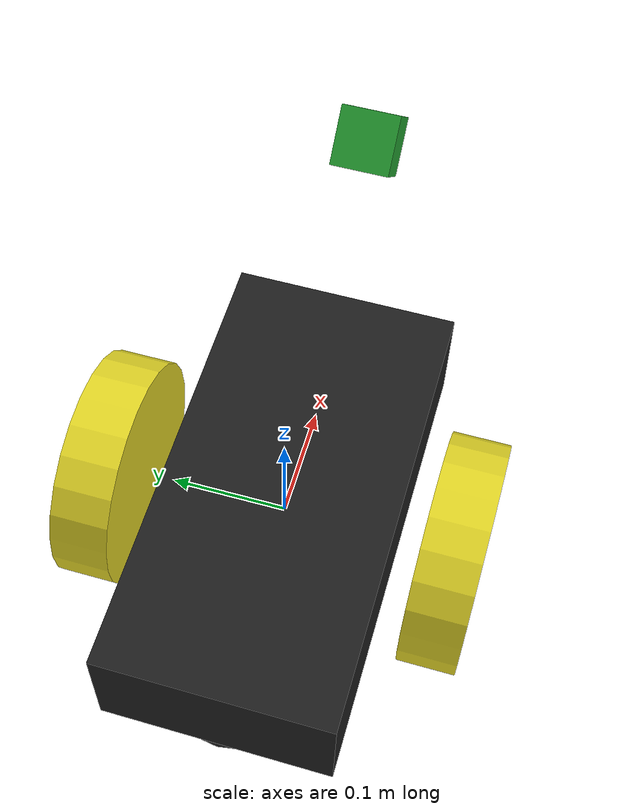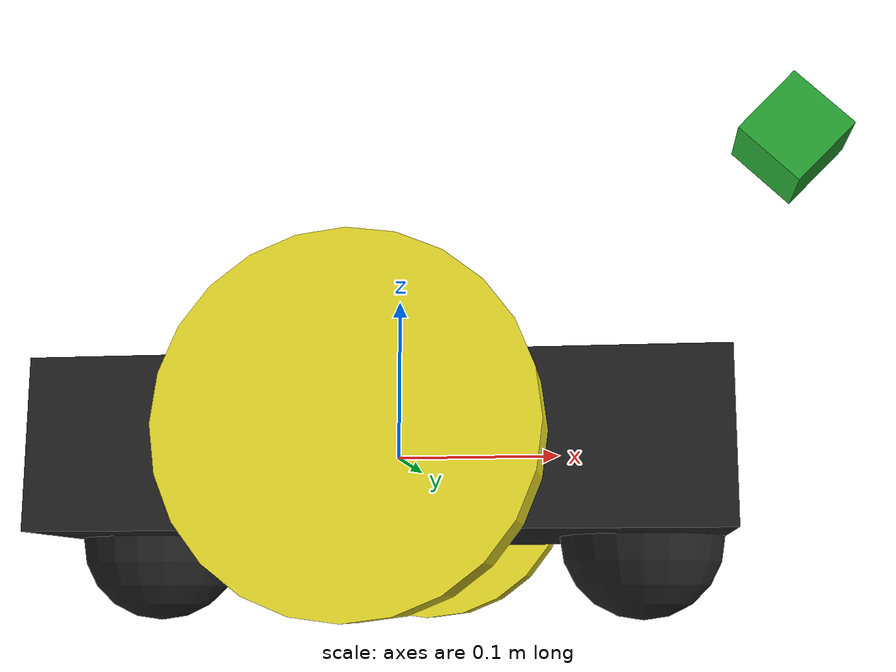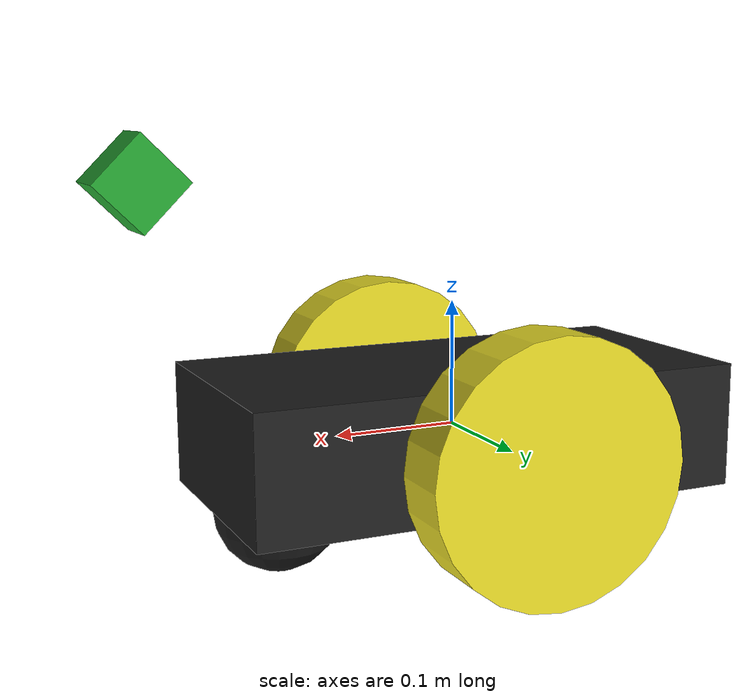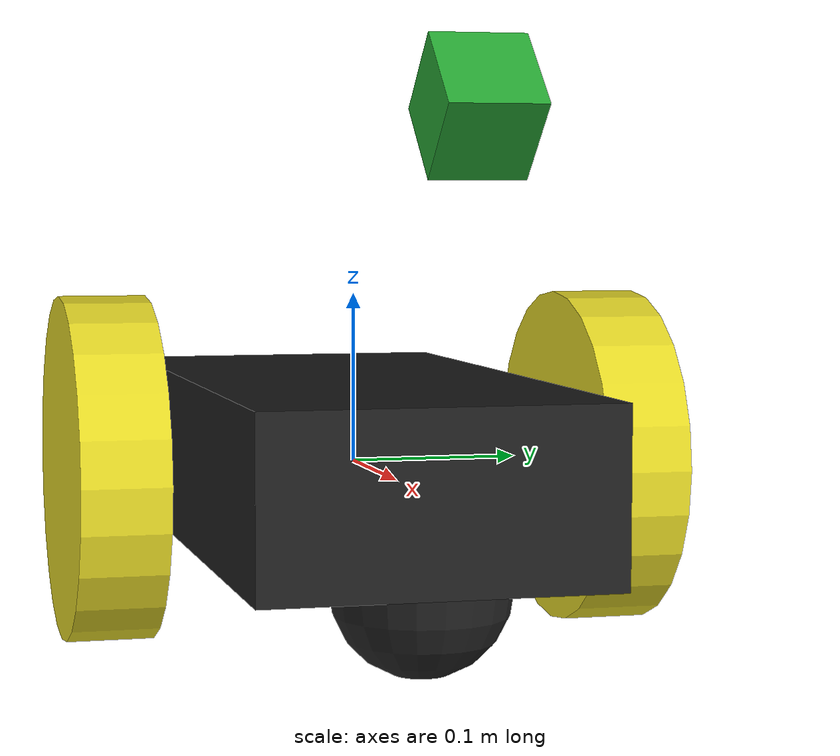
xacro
<?xml version='1.0'?>

<robot name="myrobot" xmlns:xacro="http://www.ros.org/wiki/xacro">

  <xacro:property name="cameraSize" value="0.05"/>
  <xacro:property name="cameraMass" value="0.1"/>

  <xacro:include filename="$(find aruco_nav)/urdf/materials.xacro"/>
  <xacro:include filename="$(find aruco_nav)/urdf/spcbot.gazebo.xacro"/>

  <link name='chassis'>
    <pose>0 0 0.1 0 0 0</pose>

    <inertial>
      <mass value="5.0"/>
      <origin xyz="0.0 0 0.1" rpy=" 0 0 0"/>
      <inertia
          ixx="0.1" ixy="0" ixz="0"
          iyy="0.1" iyz="0"
          izz="0.1"
      />
    </inertial>

    <collision name='collision'>
      <geometry>
        <box size=".4 .2 .1"/>
      </geometry>
    </collision>

    <visual name='chassis_visual'>
      <origin xyz="0 0 0" rpy=" 0 0 0"/>
      <geometry>
        <box size=".4 .2 .1"/>
      </geometry>
      <material name="black"/>
    </visual>
    <collision name='caster_collision'>
      <origin xyz="-0.15 0 -0.05" rpy=" 0 0 0"/>
      <geometry>
        <sphere radius="0.05"/>
      </geometry>
    </collision>

    <visual name='caster_visual'>
      <origin xyz="-0.15 0 -0.05" rpy=" 0 0 0"/>
      <geometry>
        <sphere radius="0.05"/>
      </geometry>
    </visual>

    <collision name='caster_front_collision'>
      <origin xyz="0.15 0 -0.05" rpy=" 0 0 0"/>
      <geometry>
        <sphere radius="0.05"/>
      </geometry>
    </collision>

    <visual name='caster_front_visual'>
      <origin xyz="0.15 0 -0.05" rpy=" 0 0 0"/>
      <geometry>
        <sphere radius="0.05"/>
      </geometry>
    </visual>

  </link>

  <link name="left_wheel">
    <!--origin xyz="0.1 0.13 0.1" rpy="0 1.5707 1.5707"/-->
    <collision name="collision">
      <origin xyz="0 0 0" rpy="0 1.5707 1.5707"/>
      <geometry>
        <cylinder radius="0.1" length="0.05"/>
      </geometry>
    </collision>
    <visual name="left_wheel_visual">
      <origin xyz="0 0 0" rpy="0 1.5707 1.5707"/>
      <geometry>
        <cylinder radius="0.1" length="0.05"/>
      </geometry>
      <material name="yellow"/>
    </visual>
    <inertial>
      <origin xyz="0 0 0" rpy="0 1.5707 1.5707"/>
      <mass value="5"/>
      <inertia
        ixx=".1" ixy="0.0" ixz="0.0"
        iyy=".1" iyz="0.0"
        izz=".1"/>
    </inertial>
  </link>

  <link name="right_wheel">
    <!--origin xyz="0.1 -0.13 0.1" rpy="0 1.5707 1.5707"/-->
    <collision name="collision">
      <origin xyz="0 0 0" rpy="0 1.5707 1.5707"/>
      <geometry>
        <cylinder radius="0.1" length="0.05"/>
      </geometry>
    </collision>
    <visual name="right_wheel_visual">
      <origin xyz="0 0 0" rpy="0 1.5707 1.5707"/>
      <geometry>
        <cylinder radius="0.1" length="0.05"/>
      </geometry>
      <material name="yellow"/>
    </visual>
    <inertial>
      <origin xyz="0 0 0" rpy="0 1.5707 1.5707"/>
      <mass value="5"/>
      <inertia
        ixx=".1" ixy="0.0" ixz="0.0"
        iyy=".1" iyz="0.0"
        izz=".1"/>
    </inertial>
  </link>

  <joint type="continuous" name="left_wheel_hinge">
    <origin xyz="0 0.15 0" rpy="0 0 0"/>
    <!--origin xyz="0.1 0.13 0" rpy="0 1.5707 1.5707"/-->
    <child link="left_wheel"/>
    <parent link="chassis"/>
    <axis xyz="0 1 0" rpy="0 0 0"/>
    <joint_properties damping="0.0" friction="0.0"/>
  </joint>

  <joint type="continuous" name="right_wheel_hinge">
    <origin xyz="0 -0.15 0" rpy="0 0 0"/>
    <!--origin xyz="0.1 -0.13 0" rpy="0 1.5707 1.5707"/-->
    <child link="right_wheel"/>
    <parent link="chassis"/>
    <axis xyz="0 1 0" rpy="0 0 0"/>
    <joint_properties damping="0.0" friction="0.0"/>
  </joint>

   <!-- Hokuyo Laser  -->

</robot>

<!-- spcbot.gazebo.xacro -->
<robot name="spcbot_gazebo" xmlns:xacro="http://ros.org/wiki/xacro">

  <link name="camera_link">
    <visual>
      <origin xyz="0 0 0" rpy="0 0 0"/>
      <geometry>
        <box size="${cameraSize} ${cameraSize} ${cameraSize}"/>
      </geometry>
      <material name="green"/>
    </visual>
  </link>

   <joint name="camera_joint" type="fixed">
    <origin xyz="0.25 0 .2" rpy="0  0.7853  0"/>
    <parent link="chassis"/>
    <child link="camera_link"/>
  </joint>

  <joint name="camera_optical_joint" type="fixed">

    <parent link="camera_link"/>
    <child link="camera_link_optical"/>
    <origin xyz="0 0 0" rpy="-1.570796 0 -1.570796"/>

  </joint>

  <link name="camera_link_optical"></link>

   <gazebo reference="camera_link">
    <material>Gazebo/Green</material>
    <sensor type="camera" name="camera">
      <update_rate>30.0</update_rate>
      <visualize>true</visualize>
      <camera name="head">
        <horizontal_fov>1.3962634</horizontal_fov>
        <image>
          <width>640</width>
          <height>480</height>
          <format>R8G8B8</format>
        </image>
        <clip>
          <near>0.02</near>
          <far>300</far>
        </clip>
      </camera>
      <plugin name="camera_controller" filename="libgazebo_ros_camera.so">

        <alwaysOn>true</alwaysOn>
        <updateRate>0.0</updateRate>
        <cameraName>spcbot/camera</cameraName>
        <imageTopicName>image_raw</imageTopicName>
        <cameraInfoTopicName>camera_info</cameraInfoTopicName>
        <frameName>camera_link_optical</frameName>
        <hackBaseline>0.07</hackBaseline>
        <distortionK1>0.0</distortionK1>
        <distortionK2>0.0</distortionK2>
        <distortionK3>0.0</distortionK3>
        <distortionT1>0.0</distortionT1>
        <distortionT2>0.0</distortionT2>
      </plugin>
    </sensor>
  </gazebo>

  <gazebo>
    <plugin name="differential_drive_controller" filename="libgazebo_ros_diff_drive.so">
      <legacyMode>false</legacyMode>
      <alwaysOn>true</alwaysOn>
      <updateRate>30</updateRate>
      <leftJoint>left_wheel_hinge</leftJoint>
      <rightJoint>right_wheel_hinge</rightJoint>
      <wheelSeparation>0.30</wheelSeparation>
      <wheelDiameter>0.2</wheelDiameter>
      <torque>30</torque>
      <commandTopic>cmd_vel</commandTopic>
      <odometryTopic>odom</odometryTopic>
      <odometryFrame>odom</odometryFrame>
      <robotBaseFrame>chassis</robotBaseFrame>
    </plugin>
  </gazebo>

  <gazebo reference="chassis">
      <material>
        Gazebo/Black
      </material>
  </gazebo>

  <gazebo reference="left_wheel">
      <material>
        Gazebo/Yellow
      </material>
  </gazebo>

  <gazebo reference="right_wheel">
      <material>
        Gazebo/Yellow
      </material>
  </gazebo>

<!-- hokuyo -->

</robot>
